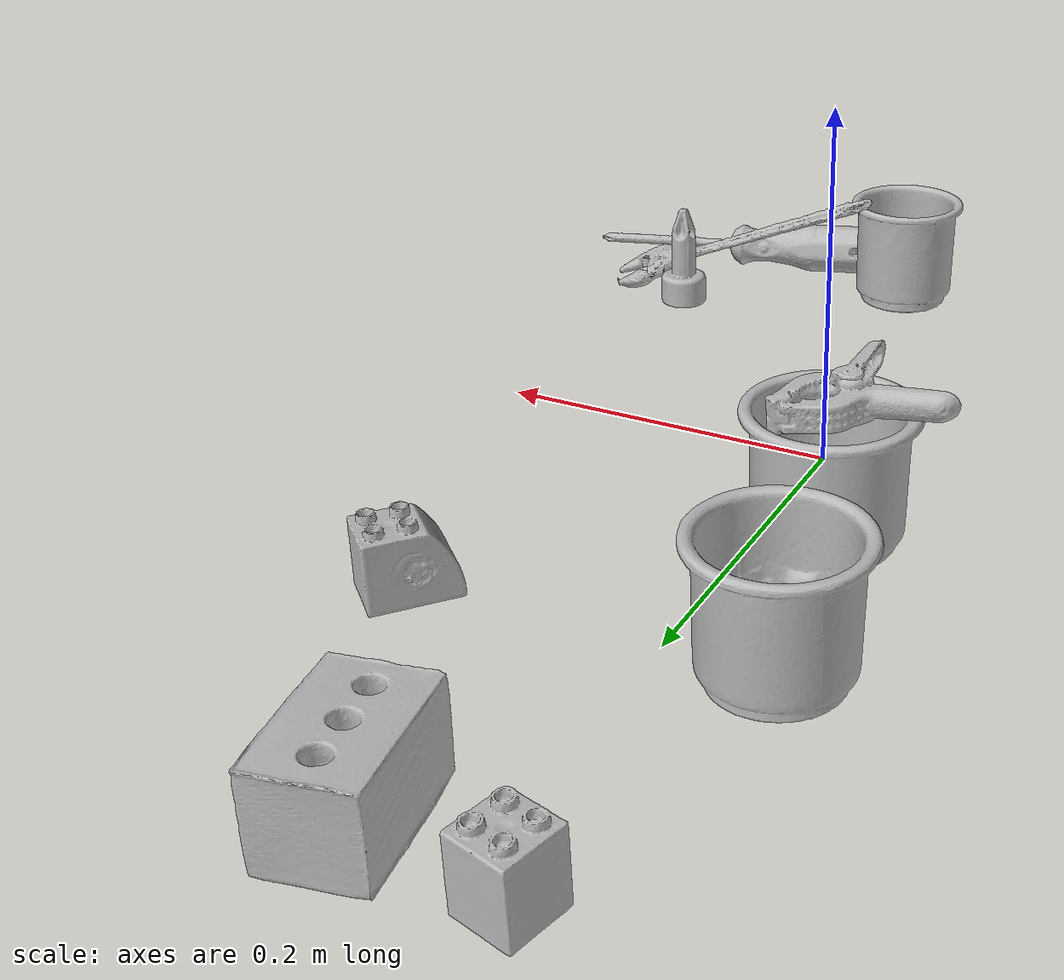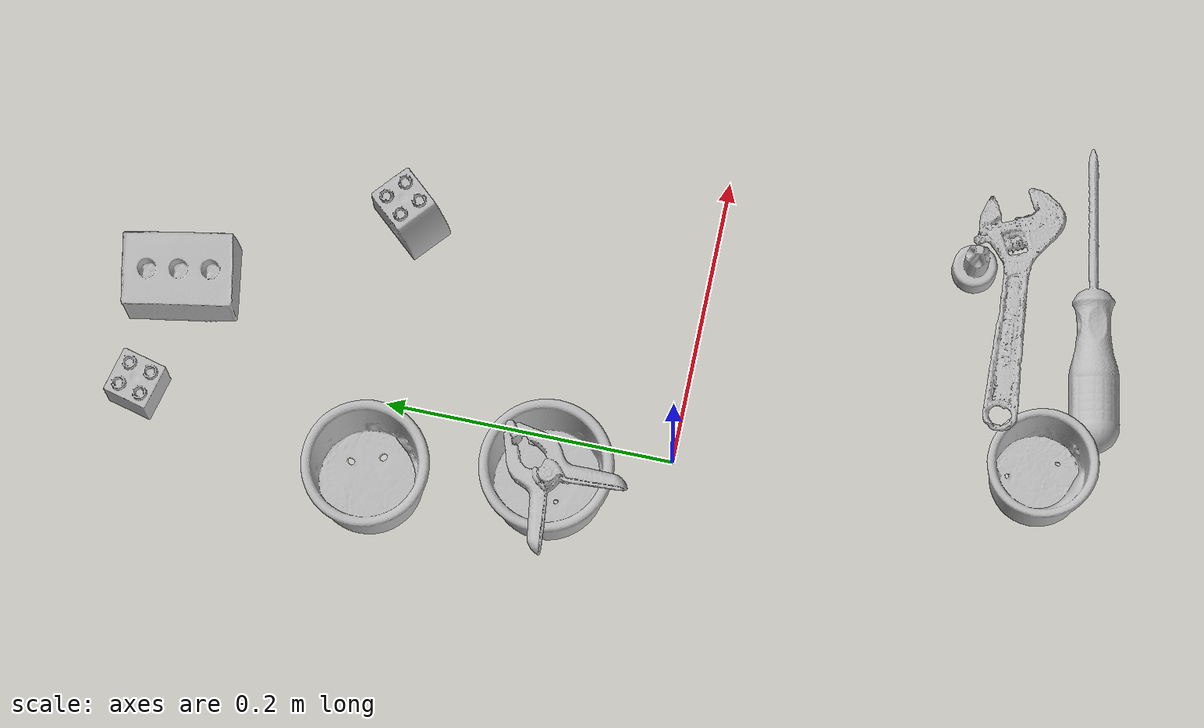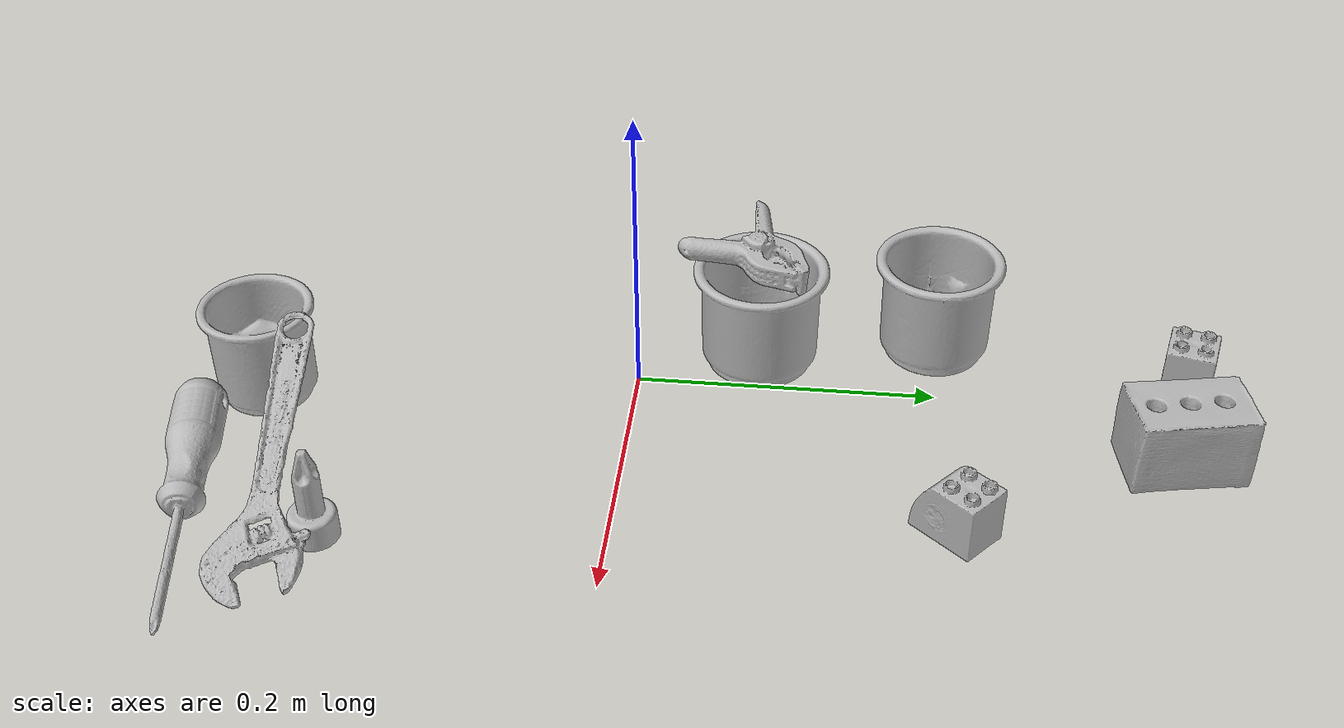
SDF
<sdf version="1.4">
  <world name="default">
    <light name="light1" type="point">
      <pose>0 0 1 0 0 0</pose>
      <diffuse>3 3 3 1</diffuse>
      <specular>3 3 3 1</specular>
    </light>
    <light name="light2" type="point">
      <pose>0 0.5 2 0 0 0</pose>
      <diffuse>1 1 1 1</diffuse>
      <specular>1 1 1 1</specular>
    </light>
    <light name="light3" type="point">
      <pose>0 0.5 2 0 0 0</pose>
      <diffuse>3 3 3 1</diffuse>
      <specular>3 3 3 1</specular>
    </light>
    <scene>
      <ambient>0.7 0.7 0.7</ambient>
    </scene>
    <model name="cup1">
      <link name="link_cup1">
        <collision name="default">
          <geometry>
            <mesh>
              <uri>model://h_cups/collision_meshes/collision.obj</uri>
              <scale>1.0 1.0 1.0</scale>
            </mesh>
          </geometry>
          <surface>
            <friction>
              <ode>
                <mu>0.5</mu>
                <mu2>0.5</mu2>
              </ode>
            </friction>
          <contact>
        <ode>
            <max_vel>0</max_vel>
            <min_depth>0.0001</min_depth>
            <kp>1e8</kp>
        </ode>
    </contact></surface>
        </collision>
        <visual name="default">
          <geometry>
            <mesh>
              <uri>model://h_cups/visual_meshes/visual.dae</uri>
              <scale>1.0 1.0 1.0</scale>
            </mesh>
          </geometry>
        </visual>
        <inertial>
          <mass>0.09017354249954224</mass>
          <pose>-2.702734127524309e-05 0.00023018653155304492 -0.0018405391601845622 -0.024362361674121313 0.06545247408237653 0.12884890922354367</pose>
          <inertia>
            <ixx>0.00011645493</ixx>
            <iyy>0.000115065246</iyy>
            <izz>0.00012212929</izz>
            <ixy>0</ixy>
            <ixz>0</ixz>
            <iyz>0</iyz>
          </inertia>
        </inertial>
      </link>
      <pose>-0.03318590670824051 0.07974539697170258 0.03775802627205849 3.845837364750684e-08 2.065694139272224e-06 1.1419584536602163</pose>
    </model>
    <model name="cup2">
      <link name="link_cup2">
        <collision name="default">
          <geometry>
            <mesh>
              <uri>model://g_cups/collision_meshes/collision.obj</uri>
              <scale>1.0 1.0 1.0</scale>
            </mesh>
          </geometry>
          <surface>
            <friction>
              <ode>
                <mu>0.5</mu>
                <mu2>0.5</mu2>
              </ode>
            </friction>
          <contact>
        <ode>
            <max_vel>0</max_vel>
            <min_depth>0.0001</min_depth>
            <kp>1e8</kp>
        </ode>
    </contact></surface>
        </collision>
        <visual name="default">
          <geometry>
            <mesh>
              <uri>model://g_cups/visual_meshes/visual.dae</uri>
              <scale>1.0 1.0 1.0</scale>
            </mesh>
          </geometry>
        </visual>
        <inertial>
          <mass>0.07892031967639923</mass>
          <pose>-0.0007946275873109698 -4.206384619465098e-05 -0.0021329368464648724 -0.21381953376637775 -0.31410844314425407 0.31119468358147234</pose>
          <inertia>
            <ixx>9.211769e-05</ixx>
            <iyy>9.180432e-05</iyy>
            <izz>9.541806e-05</izz>
            <ixy>0</ixy>
            <ixz>0</ixz>
            <iyz>0</iyz>
          </inertia>
        </inertial>
      </link>
      <pose>-0.05616171658039093 0.19917768239974976 0.03720298409461975 -1.2120333489271933e-07 5.5437487814401845e-08 1.7852639671305786</pose>
    </model>
    <model name="cup3">
      <link name="link_cup3">
        <collision name="default">
          <geometry>
            <mesh>
              <uri>model://e_cups/collision_meshes/collision.obj</uri>
              <scale>1.0 1.0 1.0</scale>
            </mesh>
          </geometry>
          <surface>
            <friction>
              <ode>
                <mu>0.5</mu>
                <mu2>0.5</mu2>
              </ode>
            </friction>
          <contact>
        <ode>
            <max_vel>0</max_vel>
            <min_depth>0.0001</min_depth>
            <kp>1e8</kp>
        </ode>
    </contact></surface>
        </collision>
        <visual name="default">
          <geometry>
            <mesh>
              <uri>model://e_cups/visual_meshes/visual.dae</uri>
              <scale>1.0 1.0 1.0</scale>
            </mesh>
          </geometry>
        </visual>
        <inertial>
          <mass>0.08743876963853836</mass>
          <pose>0.0011355745373293757 0.0028797851409763098 -0.0038829741533845663 0.6952398618358687 0.08767880823198544 -0.5235243888876825</pose>
          <inertia>
            <ixx>7.709911e-05</ixx>
            <iyy>8.05796e-05</iyy>
            <izz>7.3715666e-05</izz>
            <ixy>0</ixy>
            <ixz>0</ixz>
            <iyz>0</iyz>
          </inertia>
        </inertial>
      </link>
      <pose>0.037006501108407974 -0.2461482286453247 0.03559884801506996 0.0007137034551045256 -0.0009002152433914471 2.3743822064603823</pose>
    </model>
    <model name="toy1">
      <link name="link_toy1">
        <collision name="default">
          <geometry>
            <mesh>
              <uri>model://d_lego_duplo/collision_meshes/collision.obj</uri>
              <scale>1.0 1.0 1.0</scale>
            </mesh>
          </geometry>
          <surface>
            <friction>
              <ode>
                <mu>0.5</mu>
                <mu2>0.5</mu2>
              </ode>
            </friction>
          <contact>
        <ode>
            <max_vel>0</max_vel>
            <min_depth>0.0001</min_depth>
            <kp>1e8</kp>
        </ode>
    </contact></surface>
        </collision>
        <visual name="default">
          <geometry>
            <mesh>
              <uri>model://d_lego_duplo/visual_meshes/visual.dae</uri>
              <scale>1.0 1.0 1.0</scale>
            </mesh>
          </geometry>
        </visual>
        <inertial>
          <mass>0.04292278364300728</mass>
          <pose>0.002830562647432089 0.00016366151976399124 0.0008589805802330375 0.08010895821025366 -0.3835521883517419 0.0010296961053417666</pose>
          <inertia>
            <ixx>8.309218e-06</ixx>
            <iyy>1.1793034e-05</iyy>
            <izz>1.1372727e-05</izz>
            <ixy>0</ixy>
            <ixz>0</ixz>
            <iyz>0</iyz>
          </inertia>
        </inertial>
      </link>
      <pose>0.13037781417369843 0.21049337089061737 0.021739818155765533 -3.464461504045093e-05 -6.5603509014005996e-06 0.8523542030740998</pose>
    </model>
    <model name="toy2">
      <link name="link_toy2">
        <collision name="default">
          <geometry>
            <mesh>
              <uri>model://foam_brick/collision_meshes/collision.obj</uri>
              <scale>1.0 1.0 1.0</scale>
            </mesh>
          </geometry>
          <surface>
            <friction>
              <ode>
                <mu>0.5</mu>
                <mu2>0.5</mu2>
              </ode>
            </friction>
          <contact>
        <ode>
            <max_vel>0</max_vel>
            <min_depth>0.0001</min_depth>
            <kp>1e8</kp>
        </ode>
    </contact></surface>
        </collision>
        <visual name="default">
          <geometry>
            <mesh>
              <uri>model://foam_brick/visual_meshes/visual.dae</uri>
              <scale>1.0 1.0 1.0</scale>
            </mesh>
          </geometry>
        </visual>
        <inertial>
          <mass>0.21218973398208618</mass>
          <pose>-0.0002522472059354186 0.00034584320383146405 -0.0002532101352699101 -0.2940188212014215 0.017274433063530492 -0.0007449861184219897</pose>
          <inertia>
            <ixx>9.268843e-05</ixx>
            <iyy>0.00014798183</iyy>
            <izz>0.00014986254</izz>
            <ixy>0</ixy>
            <ixz>0</ixz>
            <iyz>0</iyz>
          </inertia>
        </inertial>
      </link>
      <pose>0.053629569709300995 0.3543523848056793 0.025922799482941628 0.013416902341642006 0.004153022546987425 -1.389265376452633</pose>
    </model>
    <model name="toy3">
      <link name="link_toy3">
        <collision name="default">
          <geometry>
            <mesh>
              <uri>model://f_lego_duplo/collision_meshes/collision.obj</uri>
              <scale>1.0 1.0 1.0</scale>
            </mesh>
          </geometry>
          <surface>
            <friction>
              <ode>
                <mu>0.5</mu>
                <mu2>0.5</mu2>
              </ode>
            </friction>
          <contact>
        <ode>
            <max_vel>0</max_vel>
            <min_depth>0.0001</min_depth>
            <kp>1e8</kp>
        </ode>
    </contact></surface>
        </collision>
        <visual name="default">
          <geometry>
            <mesh>
              <uri>model://f_lego_duplo/visual_meshes/visual.dae</uri>
              <scale>1.0 1.0 1.0</scale>
            </mesh>
          </geometry>
        </visual>
        <inertial>
          <mass>0.024021470919251442</mass>
          <pose>2.3694197807344608e-05 0.00013393140397965908 0.0018837875686585903 0.02983869554967358 -0.014424868856459862 -0.6756716113514201</pose>
          <inertia>
            <ixx>5.075869e-06</ixx>
            <iyy>5.1210886e-06</iyy>
            <izz>4.4060694e-06</izz>
            <ixy>0</ixy>
            <ixz>0</ixz>
            <iyz>0</iyz>
          </inertia>
        </inertial>
      </link>
      <pose>-0.024521218612790108 0.36820679903030396 0.02187090739607811 4.3601400062541226e-05 2.5897577975170216e-05 -1.8191449145485379</pose>
    </model>
    <model name="toy4">
      <link name="link_toy4">
        <collision name="default">
          <geometry>
            <mesh>
              <uri>model://d_toy_airplane/collision_meshes/collision.obj</uri>
              <scale>1.0 1.0 1.0</scale>
            </mesh>
          </geometry>
          <surface>
            <friction>
              <ode>
                <mu>0.5</mu>
                <mu2>0.5</mu2>
              </ode>
            </friction>
          <contact>
        <ode>
            <max_vel>0</max_vel>
            <min_depth>0.0001</min_depth>
            <kp>1e8</kp>
        </ode>
    </contact></surface>
        </collision>
        <visual name="default">
          <geometry>
            <mesh>
              <uri>model://d_toy_airplane/visual_meshes/visual.dae</uri>
              <scale>1.0 1.0 1.0</scale>
            </mesh>
          </geometry>
        </visual>
        <inertial>
          <mass>0.024586454033851624</mass>
          <pose>9.410288475919515e-05 -5.809331560158171e-05 -0.011728096753358841 0.0002662237897190017 0.004679022855495211 0.5193045098973154</pose>
          <inertia>
            <ixx>7.370539e-06</ixx>
            <iyy>7.376099e-06</iyy>
            <izz>2.2252145e-06</izz>
            <ixy>0</ixy>
            <ixz>0</ixz>
            <iyz>0</iyz>
          </inertia>
        </inertial>
      </link>
      <pose>0.17342010140419006 -0.17666292190551758 0.033339425921440125 0.00019646414384419855 -3.6612401406258474e-05 -1.4972291042732397</pose>
    </model>
    <model name="hardware1">
      <link name="link_hardware1">
        <collision name="default">
          <geometry>
            <mesh>
              <uri>model://phillips_screwdriver/collision_meshes/collision.obj</uri>
              <scale>1.0 1.0 1.0</scale>
            </mesh>
          </geometry>
          <surface>
            <friction>
              <ode>
                <mu>0.5</mu>
                <mu2>0.5</mu2>
              </ode>
            </friction>
          <contact>
        <ode>
            <max_vel>0</max_vel>
            <min_depth>0.0001</min_depth>
            <kp>1e8</kp>
        </ode>
    </contact></surface>
        </collision>
        <visual name="default">
          <geometry>
            <mesh>
              <uri>model://phillips_screwdriver/visual_meshes/visual.dae</uri>
              <scale>1.0 1.0 1.0</scale>
            </mesh>
          </geometry>
        </visual>
        <inertial>
          <mass>0.10962587594985962</mass>
          <pose>-0.04777182266116142 0.0010362300090491772 -0.00045555492397397757 -0.1572763288958183 0.005850995451121224 -0.002156747064170485</pose>
          <inertia>
            <ixx>1.2879916e-05</ixx>
            <iyy>0.00016149164</iyy>
            <izz>0.00016162884</izz>
            <ixy>0</ixy>
            <ixz>0</ixz>
            <iyz>0</iyz>
          </inertia>
        </inertial>
      </link>
      <pose>0.1645658016204834 -0.262407124042511 0.015409654006361961 0.065610876597983 0.03756809951135019 0.18496138162327702</pose>
    </model>
    <model name="hardware2">
      <link name="link_hardware2">
        <collision name="default">
          <geometry>
            <mesh>
              <uri>model://adjustable_wrench/collision_meshes/collision.obj</uri>
              <scale>1.0 1.0 1.0</scale>
            </mesh>
          </geometry>
          <surface>
            <friction>
              <ode>
                <mu>0.5</mu>
                <mu2>0.5</mu2>
              </ode>
            </friction>
          <contact>
        <ode>
            <max_vel>0</max_vel>
            <min_depth>0.0001</min_depth>
            <kp>1e8</kp>
        </ode>
    </contact></surface>
        </collision>
        <visual name="default">
          <geometry>
            <mesh>
              <uri>model://adjustable_wrench/visual_meshes/visual.dae</uri>
              <scale>1.0 1.0 1.0</scale>
            </mesh>
          </geometry>
        </visual>
        <inertial>
          <mass>0.02999398298561573</mass>
          <pose>0.03740980848670006 -0.002896887483075261 -0.001114922808483243 -0.014473357351062987 0.006656019865341655 -0.010954188906160397</pose>
          <inertia>
            <ixx>6.138701e-06</ixx>
            <iyy>7.184631e-05</iyy>
            <izz>7.765895e-05</izz>
            <ixy>0</ixy>
            <ixz>0</ixz>
            <iyz>0</iyz>
          </inertia>
        </inertial>
      </link>
      <pose>0.14876388013362885 -0.20352092385292053 0.03840898349881172 -0.04584975721543435 0.38400731539942373 0.042458040985590674</pose>
    </model>
    <model name="hardware3">
      <link name="link_hardware3">
        <collision name="default">
          <geometry>
            <mesh>
              <uri>model://medium_clamp/collision_meshes/collision.obj</uri>
              <scale>1.0 1.0 1.0</scale>
            </mesh>
          </geometry>
          <surface>
            <friction>
              <ode>
                <mu>0.5</mu>
                <mu2>0.5</mu2>
              </ode>
            </friction>
          <contact>
        <ode>
            <max_vel>0</max_vel>
            <min_depth>0.0001</min_depth>
            <kp>1e8</kp>
        </ode>
    </contact></surface>
        </collision>
        <visual name="default">
          <geometry>
            <mesh>
              <uri>model://medium_clamp/visual_meshes/visual.dae</uri>
              <scale>1.0 1.0 1.0</scale>
            </mesh>
          </geometry>
        </visual>
        <inertial>
          <mass>0.038817502558231354</mass>
          <pose>0.005390993785113096 0.0003953237028326839 -0.0001222158462041989 -0.0012269117309439718 0.002584502422387493 0.03820772500943274</pose>
          <inertia>
            <ixx>1.05752815e-05</ixx>
            <iyy>1.539003e-05</iyy>
            <izz>2.3705257e-05</izz>
            <ixy>0</ixy>
            <ixz>0</ixz>
            <iyz>0</iyz>
          </inertia>
        </inertial>
      </link>
      <pose>-0.04181227087974548 0.0757618397474289 0.08185677230358124 -0.004771549451686383 0.061872505942104854 0.8429414886392901</pose>
    </model>
  <physics type="ode">
      <max_contacts>50</max_contacts>
      <ode>
        <solver>
          <type>quick</type>
          <iters>75</iters>
        </solver>
        <constraints>
          <contact_max_correcting_vel>0</contact_max_correcting_vel>
          <contact_surface_layer>0</contact_surface_layer>
        </constraints>
      </ode>
    </physics></world>
</sdf>
